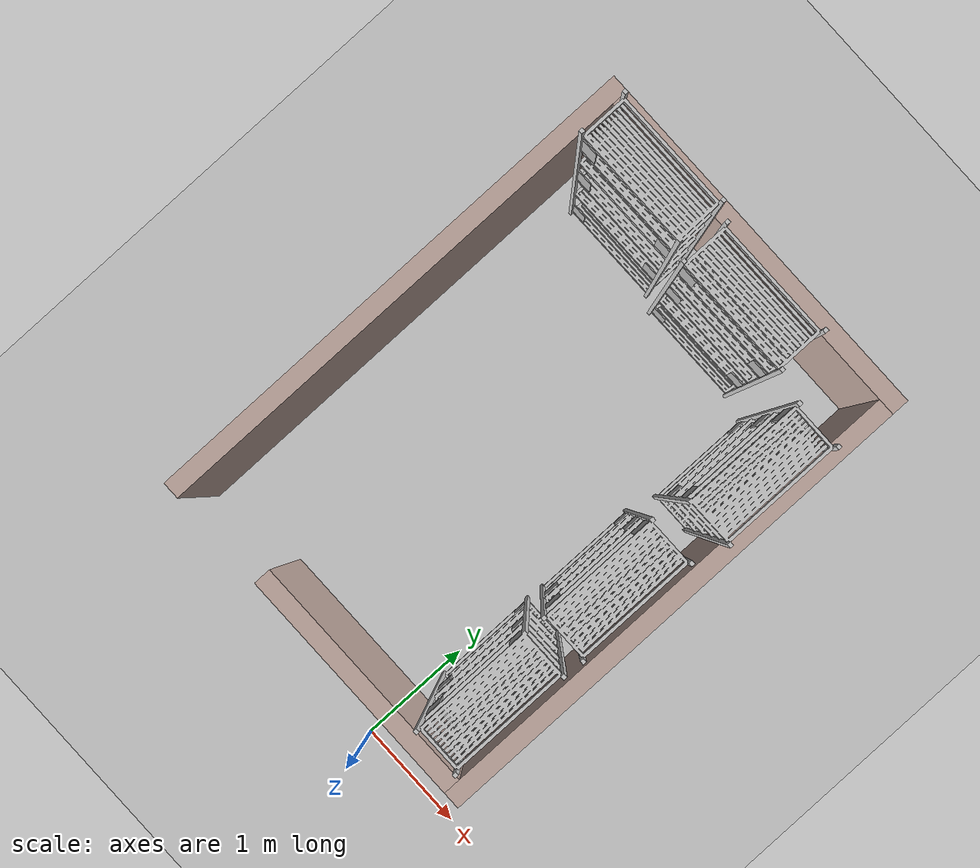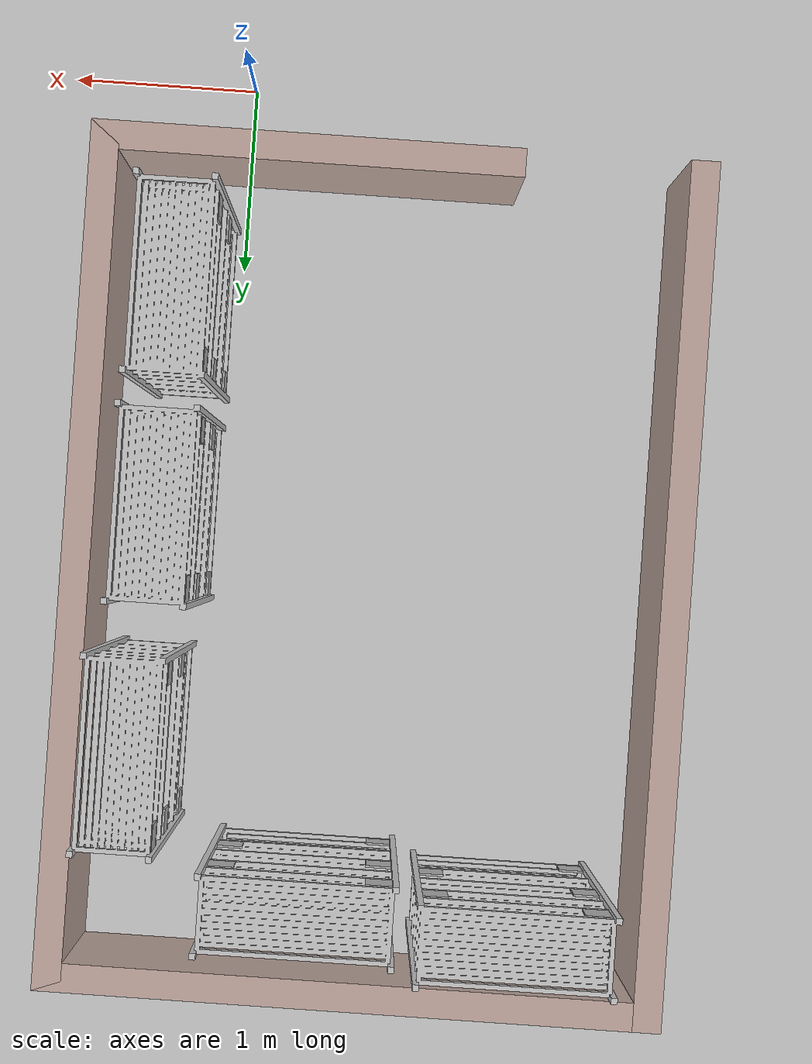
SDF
<sdf version="1.7">
 <world name="default">
  <light name="sun" type="directional">
   <pose>0 0 10 0 -0 0</pose>
   <diffuse>0.8 0.8 0.8 1</diffuse>
   <specular>0.2 0.2 0.2 1</specular>
   <attenuation>
    <range>1000</range>
    <constant>0.9</constant>
    <linear>0.01</linear>
    <quadratic>0.001</quadratic>
   </attenuation>
   <direction>-0.5 0.1 -0.9</direction>
   <spot><inner_angle>0</inner_angle><outer_angle>0</outer_angle><falloff>0</falloff></spot>
  </light>
  <model name="ground_plane">
   <static>1</static>
   <link name="link1">
    <collision name="collision">
     <geometry><plane><normal>0 0 1</normal><size>100 100</size></plane></geometry>
     <surface><friction><ode><mu>100</mu><mu2>50</mu2></ode></friction></surface>
    </collision>
    <visual name="visual">
     <cast_shadows>0</cast_shadows>
     <geometry><plane><normal>0 0 1</normal><size>100 100</size></plane></geometry>
     <material>
      <script><uri>file://media/materials/scripts/gazebo.material</uri><name>Gazebo/Grey</name></script>
     </material>
    </visual>
   </link>
  </model>
  <gravity>0 0 -9.8</gravity>
  <magnetic_field>6e-06 2.3e-05 -4.2e-05</magnetic_field>
  <atmosphere type="adiabatic"/>
  <physics type="ode">
   <max_step_size>0.001</max_step_size>
   <real_time_factor>1</real_time_factor>
   <real_time_update_rate>1000</real_time_update_rate>
  </physics>
  <scene><ambient>0.4 0.4 0.4 1</ambient><background>0.7 0.7 0.7 1</background><shadows>1</shadows></scene>
  <audio><device>default</device></audio>
  <spherical_coordinates>
   <surface_model>EARTH_WGS84</surface_model>
   <latitude_deg>0</latitude_deg>
   <longitude_deg>0</longitude_deg>
   <elevation>0</elevation>
   <heading_deg>0</heading_deg>
  </spherical_coordinates>
  <model name="Untitled">
   <pose>-0.84474 2.62917 0 0 -0 0</pose>
   <link name="Wall_0">
    <collision name="Wall_0_Collision">
     <geometry><box><size>4.5 0.15 0.9</size></box></geometry>
     <pose>0 0 0.45 0 -0 0</pose>
    </collision>
    <visual name="Wall_0_Visual">
     <pose>0 0 0.45 0 -0 0</pose>
     <geometry><box><size>4.5 0.15 0.9</size></box></geometry>
     <material>
      <script><uri>file://media/materials/scripts/gazebo.material</uri><name>Gazebo/Grey</name></script>
      <ambient>0.760784 0.662745 0.627451 1</ambient>
     </material>
     <meta><layer>0</layer></meta>
    </visual>
    <pose>-1.55 -0 0 0 -0 1.5708</pose>
   </link>
   <link name="Wall_1">
    <collision name="Wall_1_Collision">
     <geometry><box><size>3.25 0.15 0.9</size></box></geometry>
     <pose>0 0 0.45 0 -0 0</pose>
    </collision>
    <visual name="Wall_1_Visual">
     <pose>0 0 0.45 0 -0 0</pose>
     <geometry><box><size>3.25 0.15 0.9</size></box></geometry>
     <material>
      <script><uri>file://media/materials/scripts/gazebo.material</uri><name>Gazebo/Grey</name></script>
      <ambient>0.760784 0.662745 0.627451 1</ambient>
     </material>
     <meta><layer>0</layer></meta>
    </visual>
    <pose>-0 2.175 0 0 -0 0</pose>
   </link>
   <link name="Wall_2">
    <collision name="Wall_2_Collision">
     <geometry><box><size>4.5 0.15 0.9</size></box></geometry>
     <pose>0 0 0.45 0 -0 0</pose>
    </collision>
    <visual name="Wall_2_Visual">
     <pose>0 0 0.45 0 -0 0</pose>
     <geometry><box><size>4.5 0.15 0.9</size></box></geometry>
     <material>
      <script><uri>file://media/materials/scripts/gazebo.material</uri><name>Gazebo/Grey</name></script>
      <ambient>0.760784 0.662745 0.627451 1</ambient>
     </material>
     <meta><layer>0</layer></meta>
    </visual>
    <pose>1.55 -0 0 0 -0 -1.5708</pose>
   </link>
   <link name="Wall_3">
    <collision name="Wall_3_Collision">
     <geometry><box><size>2.25 0.15 0.9</size></box></geometry>
     <pose>0 0 0.45 0 -0 0</pose>
    </collision>
    <visual name="Wall_3_Visual">
     <pose>0 0 0.45 0 -0 0</pose>
     <geometry><box><size>2.25 0.15 0.9</size></box></geometry>
     <material>
      <script><uri>file://media/materials/scripts/gazebo.material</uri><name>Gazebo/Grey</name></script>
      <ambient>0.760784 0.662745 0.627451 1</ambient>
     </material>
     <meta><layer>0</layer></meta>
    </visual>
    <pose>0.5 -2.175 0 0 -0 3.14159</pose>
   </link>
   <static>1</static>
  </model>
  <model name="shelf_with_qrs_1">
   <static>true</static>
   <pose>-1.630505 4.352807 0 0 0 -3.14</pose>
   <link name="shelf_frame">
    <visual name="visual">
     <geometry>
      <mesh><uri>file:///root/inter_iit_ws/src/mecanum_gazebo/arena/models/shelf.dae</uri></mesh>
     </geometry>
    </visual>
    <collision name="collision">
     <geometry>
      <mesh><uri>file:///root/inter_iit_ws/src/mecanum_gazebo/arena/models/shelf.dae</uri></mesh>
     </geometry>
    </collision>
   </link>
   <link name="qr_1">
    <pose>-0.39 0.18 1.22 0 0 0</pose>
    <visual name="visual">
     <geometry><mesh><uri>file:///root/inter_iit_ws/src/mecanum_gazebo/arena/models/qr.dae</uri></mesh></geometry>
     <material>
      <script>
       <uri>file:///root/inter_iit_ws/src/mecanum_gazebo/arena/materials/scripts/my_materials.material</uri>
       <name>MyQR/QR1</name>
      </script>
     </material>
    </visual>
    <collision name="collision">
     <geometry><mesh><uri>file:///root/inter_iit_ws/src/mecanum_gazebo/arena/models/qr.dae</uri></mesh></geometry>
    </collision>
   </link>
   <link name="qr_2">
    <pose>0.39 0.18 0.87 0 0 0</pose>
    <visual name="visual">
     <geometry><mesh><uri>file:///root/inter_iit_ws/src/mecanum_gazebo/arena/models/qr.dae</uri></mesh></geometry>
     <material>
      <script>
       <uri>file:///root/inter_iit_ws/src/mecanum_gazebo/arena/materials/scripts/my_materials.material</uri>
       <name>MyQR/QR2</name>
      </script>
     </material>
    </visual>
    <collision name="collision">
     <geometry><mesh><uri>file:///root/inter_iit_ws/src/mecanum_gazebo/arena/models/qr.dae</uri></mesh></geometry>
    </collision>
   </link>
   <link name="qr_3">
    <pose>-0.39 0.18 0.52 0 0 0</pose>
    <visual name="visual">
     <geometry><mesh><uri>file:///root/inter_iit_ws/src/mecanum_gazebo/arena/models/qr.dae</uri></mesh></geometry>
     <material>
      <script>
       <uri>file:///root/inter_iit_ws/src/mecanum_gazebo/arena/materials/scripts/my_materials.material</uri>
       <name>MyQR/QR3</name>
      </script>
     </material>
    </visual>
    <collision name="collision">
     <geometry><mesh><uri>file:///root/inter_iit_ws/src/mecanum_gazebo/arena/models/qr.dae</uri></mesh></geometry>
    </collision>
   </link>
   <link name="qr_4">
    <pose>0.39 0.18 0.06 0 0 0</pose>
    <visual name="visual">
     <geometry><mesh><uri>file:///root/inter_iit_ws/src/mecanum_gazebo/arena/models/qr.dae</uri></mesh></geometry>
     <material>
      <script>
       <uri>file:///root/inter_iit_ws/src/mecanum_gazebo/arena/materials/scripts/my_materials.material</uri>
       <name>MyQR/QR1</name>
      </script>
     </material>
    </visual>
    <collision name="collision">
     <geometry><mesh><uri>file:///root/inter_iit_ws/src/mecanum_gazebo/arena/models/qr.dae</uri></mesh></geometry>
    </collision>
   </link>
   <link name="qr_5">
    <pose>0.39 0.18 1.475 0 0 0</pose>
    <visual name="visual">
     <geometry><mesh><uri>file:///root/inter_iit_ws/src/mecanum_gazebo/arena/models/qr.dae</uri></mesh></geometry>
     <material>
      <script>
       <uri>file:///root/inter_iit_ws/src/mecanum_gazebo/arena/materials/scripts/my_materials.material</uri>
       <name>MyQR/QR3</name>
      </script>
     </material>
    </visual>
    <collision name="collision">
     <geometry><mesh><uri>file:///root/inter_iit_ws/src/mecanum_gazebo/arena/models/qr.dae</uri></mesh></geometry>
    </collision>
   </link>
  </model>
  <model name="shelf_with_qrs_2">
   <static>true</static>
   <pose>-0.568534 4.27874 0 0 0 -3.14</pose>
   <link name="shelf_frame">
    <visual name="visual">
     <geometry>
      <mesh><uri>file:///root/inter_iit_ws/src/mecanum_gazebo/arena/models/shelf.dae</uri></mesh>
     </geometry>
    </visual>
    <collision name="collision">
     <geometry>
      <mesh><uri>file:///root/inter_iit_ws/src/mecanum_gazebo/arena/models/shelf.dae</uri></mesh>
     </geometry>
    </collision>
   </link>
   <link name="qr_1">
    <pose>-0.39 0.18 1.22 0 0 0</pose>
    <visual name="visual">
     <geometry><mesh><uri>file:///root/inter_iit_ws/src/mecanum_gazebo/arena/models/qr.dae</uri></mesh></geometry>
     <material>
      <script>
       <uri>file:///root/inter_iit_ws/src/mecanum_gazebo/arena/materials/scripts/my_materials.material</uri>
       <name>MyQR/QR1</name>
      </script>
     </material>
    </visual>
    <collision name="collision">
     <geometry><mesh><uri>file:///root/inter_iit_ws/src/mecanum_gazebo/arena/models/qr.dae</uri></mesh></geometry>
    </collision>
   </link>
   <link name="qr_2">
    <pose>0.39 0.18 0.87 0 0 0</pose>
    <visual name="visual">
     <geometry><mesh><uri>file:///root/inter_iit_ws/src/mecanum_gazebo/arena/models/qr.dae</uri></mesh></geometry>
     <material>
      <script>
       <uri>file:///root/inter_iit_ws/src/mecanum_gazebo/arena/materials/scripts/my_materials.material</uri>
       <name>MyQR/QR2</name>
      </script>
     </material>
    </visual>
    <collision name="collision">
     <geometry><mesh><uri>file:///root/inter_iit_ws/src/mecanum_gazebo/arena/models/qr.dae</uri></mesh></geometry>
    </collision>
   </link>
   <link name="qr_3">
    <pose>-0.39 0.18 0.52 0 0 0</pose>
    <visual name="visual">
     <geometry><mesh><uri>file:///root/inter_iit_ws/src/mecanum_gazebo/arena/models/qr.dae</uri></mesh></geometry>
     <material>
      <script>
       <uri>file:///root/inter_iit_ws/src/mecanum_gazebo/arena/materials/scripts/my_materials.material</uri>
       <name>MyQR/QR3</name>
      </script>
     </material>
    </visual>
    <collision name="collision">
     <geometry><mesh><uri>file:///root/inter_iit_ws/src/mecanum_gazebo/arena/models/qr.dae</uri></mesh></geometry>
    </collision>
   </link>
   <link name="qr_4">
    <pose>0.39 0.18 0.06 0 0 0</pose>
    <visual name="visual">
     <geometry><mesh><uri>file:///root/inter_iit_ws/src/mecanum_gazebo/arena/models/qr.dae</uri></mesh></geometry>
     <material>
      <script>
       <uri>file:///root/inter_iit_ws/src/mecanum_gazebo/arena/materials/scripts/my_materials.material</uri>
       <name>MyQR/QR1</name>
      </script>
     </material>
    </visual>
    <collision name="collision">
     <geometry><mesh><uri>file:///root/inter_iit_ws/src/mecanum_gazebo/arena/models/qr.dae</uri></mesh></geometry>
    </collision>
   </link>
   <link name="qr_5">
    <pose>0.39 0.18 1.475 0 0 0</pose>
    <visual name="visual">
     <geometry><mesh><uri>file:///root/inter_iit_ws/src/mecanum_gazebo/arena/models/qr.dae</uri></mesh></geometry>
     <material>
      <script>
       <uri>file:///root/inter_iit_ws/src/mecanum_gazebo/arena/materials/scripts/my_materials.material</uri>
       <name>MyQR/QR3</name>
      </script>
     </material>
    </visual>
    <collision name="collision">
     <geometry><mesh><uri>file:///root/inter_iit_ws/src/mecanum_gazebo/arena/models/qr.dae</uri></mesh></geometry>
    </collision>
   </link>
  </model>
  <model name="shelf_with_qrs_3">
   <static>true</static>
   <pose>0.325167 3.557165 0 0 0 1.57</pose>
   <link name="shelf_frame">
    <visual name="visual">
     <geometry>
      <mesh><uri>file:///root/inter_iit_ws/src/mecanum_gazebo/arena/models/shelf.dae</uri></mesh>
     </geometry>
    </visual>
    <collision name="collision">
     <geometry>
      <mesh><uri>file:///root/inter_iit_ws/src/mecanum_gazebo/arena/models/shelf.dae</uri></mesh>
     </geometry>
    </collision>
   </link>
   <link name="qr_1">
    <pose>-0.39 0.18 1.22 0 0 0</pose>
    <visual name="visual">
     <geometry><mesh><uri>file:///root/inter_iit_ws/src/mecanum_gazebo/arena/models/qr.dae</uri></mesh></geometry>
     <material>
      <script>
       <uri>file:///root/inter_iit_ws/src/mecanum_gazebo/arena/materials/scripts/my_materials.material</uri>
       <name>MyQR/QR1</name>
      </script>
     </material>
    </visual>
    <collision name="collision">
     <geometry><mesh><uri>file:///root/inter_iit_ws/src/mecanum_gazebo/arena/models/qr.dae</uri></mesh></geometry>
    </collision>
   </link>
   <link name="qr_2">
    <pose>0.39 0.18 0.87 0 0 0</pose>
    <visual name="visual">
     <geometry><mesh><uri>file:///root/inter_iit_ws/src/mecanum_gazebo/arena/models/qr.dae</uri></mesh></geometry>
     <material>
      <script>
       <uri>file:///root/inter_iit_ws/src/mecanum_gazebo/arena/materials/scripts/my_materials.material</uri>
       <name>MyQR/QR2</name>
      </script>
     </material>
    </visual>
    <collision name="collision">
     <geometry><mesh><uri>file:///root/inter_iit_ws/src/mecanum_gazebo/arena/models/qr.dae</uri></mesh></geometry>
    </collision>
   </link>
   <link name="qr_3">
    <pose>-0.39 0.18 0.52 0 0 0</pose>
    <visual name="visual">
     <geometry><mesh><uri>file:///root/inter_iit_ws/src/mecanum_gazebo/arena/models/qr.dae</uri></mesh></geometry>
     <material>
      <script>
       <uri>file:///root/inter_iit_ws/src/mecanum_gazebo/arena/materials/scripts/my_materials.material</uri>
       <name>MyQR/QR3</name>
      </script>
     </material>
    </visual>
    <collision name="collision">
     <geometry><mesh><uri>file:///root/inter_iit_ws/src/mecanum_gazebo/arena/models/qr.dae</uri></mesh></geometry>
    </collision>
   </link>
   <link name="qr_4">
    <pose>0.39 0.18 0.06 0 0 0</pose>
    <visual name="visual">
     <geometry><mesh><uri>file:///root/inter_iit_ws/src/mecanum_gazebo/arena/models/qr.dae</uri></mesh></geometry>
     <material>
      <script>
       <uri>file:///root/inter_iit_ws/src/mecanum_gazebo/arena/materials/scripts/my_materials.material</uri>
       <name>MyQR/QR1</name>
      </script>
     </material>
    </visual>
    <collision name="collision">
     <geometry><mesh><uri>file:///root/inter_iit_ws/src/mecanum_gazebo/arena/models/qr.dae</uri></mesh></geometry>
    </collision>
   </link>
   <link name="qr_5">
    <pose>0.39 0.18 1.475 0 0 0</pose>
    <visual name="visual">
     <geometry><mesh><uri>file:///root/inter_iit_ws/src/mecanum_gazebo/arena/models/qr.dae</uri></mesh></geometry>
     <material>
      <script>
       <uri>file:///root/inter_iit_ws/src/mecanum_gazebo/arena/materials/scripts/my_materials.material</uri>
       <name>MyQR/QR3</name>
      </script>
     </material>
    </visual>
    <collision name="collision">
     <geometry><mesh><uri>file:///root/inter_iit_ws/src/mecanum_gazebo/arena/models/qr.dae</uri></mesh></geometry>
    </collision>
   </link>
  </model>
  <model name="shelf_with_qrs_4">
   <static>true</static>
   <pose>0.246436 2.353380 0 0 0 1.57</pose>
   <link name="shelf_frame">
    <visual name="visual">
     <geometry>
      <mesh><uri>file:///root/inter_iit_ws/src/mecanum_gazebo/arena/models/shelf.dae</uri></mesh>
     </geometry>
    </visual>
    <collision name="collision">
     <geometry>
      <mesh><uri>file:///root/inter_iit_ws/src/mecanum_gazebo/arena/models/shelf.dae</uri></mesh>
     </geometry>
    </collision>
   </link>
   <link name="qr_1">
    <pose>-0.39 0.18 1.22 0 0 0</pose>
    <visual name="visual">
     <geometry><mesh><uri>file:///root/inter_iit_ws/src/mecanum_gazebo/arena/models/qr.dae</uri></mesh></geometry>
     <material>
      <script>
       <uri>file:///root/inter_iit_ws/src/mecanum_gazebo/arena/materials/scripts/my_materials.material</uri>
       <name>MyQR/QR1</name>
      </script>
     </material>
    </visual>
    <collision name="collision">
     <geometry><mesh><uri>file:///root/inter_iit_ws/src/mecanum_gazebo/arena/models/qr.dae</uri></mesh></geometry>
    </collision>
   </link>
   <link name="qr_2">
    <pose>0.39 0.18 0.87 0 0 0</pose>
    <visual name="visual">
     <geometry><mesh><uri>file:///root/inter_iit_ws/src/mecanum_gazebo/arena/models/qr.dae</uri></mesh></geometry>
     <material>
      <script>
       <uri>file:///root/inter_iit_ws/src/mecanum_gazebo/arena/materials/scripts/my_materials.material</uri>
       <name>MyQR/QR2</name>
      </script>
     </material>
    </visual>
    <collision name="collision">
     <geometry><mesh><uri>file:///root/inter_iit_ws/src/mecanum_gazebo/arena/models/qr.dae</uri></mesh></geometry>
    </collision>
   </link>
   <link name="qr_3">
    <pose>-0.39 0.18 0.52 0 0 0</pose>
    <visual name="visual">
     <geometry><mesh><uri>file:///root/inter_iit_ws/src/mecanum_gazebo/arena/models/qr.dae</uri></mesh></geometry>
     <material>
      <script>
       <uri>file:///root/inter_iit_ws/src/mecanum_gazebo/arena/materials/scripts/my_materials.material</uri>
       <name>MyQR/QR3</name>
      </script>
     </material>
    </visual>
    <collision name="collision">
     <geometry><mesh><uri>file:///root/inter_iit_ws/src/mecanum_gazebo/arena/models/qr.dae</uri></mesh></geometry>
    </collision>
   </link>
   <link name="qr_4">
    <pose>0.39 0.18 0.06 0 0 0</pose>
    <visual name="visual">
     <geometry><mesh><uri>file:///root/inter_iit_ws/src/mecanum_gazebo/arena/models/qr.dae</uri></mesh></geometry>
     <material>
      <script>
       <uri>file:///root/inter_iit_ws/src/mecanum_gazebo/arena/materials/scripts/my_materials.material</uri>
       <name>MyQR/QR1</name>
      </script>
     </material>
    </visual>
    <collision name="collision">
     <geometry><mesh><uri>file:///root/inter_iit_ws/src/mecanum_gazebo/arena/models/qr.dae</uri></mesh></geometry>
    </collision>
   </link>
   <link name="qr_5">
    <pose>0.39 0.18 1.475 0 0 0</pose>
    <visual name="visual">
     <geometry><mesh><uri>file:///root/inter_iit_ws/src/mecanum_gazebo/arena/models/qr.dae</uri></mesh></geometry>
     <material>
      <script>
       <uri>file:///root/inter_iit_ws/src/mecanum_gazebo/arena/materials/scripts/my_materials.material</uri>
       <name>MyQR/QR3</name>
      </script>
     </material>
    </visual>
    <collision name="collision">
     <geometry><mesh><uri>file:///root/inter_iit_ws/src/mecanum_gazebo/arena/models/qr.dae</uri></mesh></geometry>
    </collision>
   </link>
  </model>
  <model name="shelf_with_qrs_5">
   <static>true</static>
   <pose>0.235835 1.254196 0 0 0 1.57</pose>
   <link name="shelf_frame">
    <visual name="visual">
     <geometry>
      <mesh><uri>file:///root/inter_iit_ws/src/mecanum_gazebo/arena/models/shelf.dae</uri></mesh>
     </geometry>
    </visual>
    <collision name="collision">
     <geometry>
      <mesh><uri>file:///root/inter_iit_ws/src/mecanum_gazebo/arena/models/shelf.dae</uri></mesh>
     </geometry>
    </collision>
   </link>
   <link name="qr_1">
    <pose>-0.39 0.18 1.22 0 0 0</pose>
    <visual name="visual">
     <geometry><mesh><uri>file:///root/inter_iit_ws/src/mecanum_gazebo/arena/models/qr.dae</uri></mesh></geometry>
     <material>
      <script>
       <uri>file:///root/inter_iit_ws/src/mecanum_gazebo/arena/materials/scripts/my_materials.material</uri>
       <name>MyQR/QR1</name>
      </script>
     </material>
    </visual>
    <collision name="collision">
     <geometry><mesh><uri>file:///root/inter_iit_ws/src/mecanum_gazebo/arena/models/qr.dae</uri></mesh></geometry>
    </collision>
   </link>
   <link name="qr_2">
    <pose>0.39 0.18 0.87 0 0 0</pose>
    <visual name="visual">
     <geometry><mesh><uri>file:///root/inter_iit_ws/src/mecanum_gazebo/arena/models/qr.dae</uri></mesh></geometry>
     <material>
      <script>
       <uri>file:///root/inter_iit_ws/src/mecanum_gazebo/arena/materials/scripts/my_materials.material</uri>
       <name>MyQR/QR2</name>
      </script>
     </material>
    </visual>
    <collision name="collision">
     <geometry><mesh><uri>file:///root/inter_iit_ws/src/mecanum_gazebo/arena/models/qr.dae</uri></mesh></geometry>
    </collision>
   </link>
   <link name="qr_3">
    <pose>-0.39 0.18 0.52 0 0 0</pose>
    <visual name="visual">
     <geometry><mesh><uri>file:///root/inter_iit_ws/src/mecanum_gazebo/arena/models/qr.dae</uri></mesh></geometry>
     <material>
      <script>
       <uri>file:///root/inter_iit_ws/src/mecanum_gazebo/arena/materials/scripts/my_materials.material</uri>
       <name>MyQR/QR3</name>
      </script>
     </material>
    </visual>
    <collision name="collision">
     <geometry><mesh><uri>file:///root/inter_iit_ws/src/mecanum_gazebo/arena/models/qr.dae</uri></mesh></geometry>
    </collision>
   </link>
   <link name="qr_4">
    <pose>0.39 0.18 0.06 0 0 0</pose>
    <visual name="visual">
     <geometry><mesh><uri>file:///root/inter_iit_ws/src/mecanum_gazebo/arena/models/qr.dae</uri></mesh></geometry>
     <material>
      <script>
       <uri>file:///root/inter_iit_ws/src/mecanum_gazebo/arena/materials/scripts/my_materials.material</uri>
       <name>MyQR/QR1</name>
      </script>
     </material>
    </visual>
    <collision name="collision">
     <geometry><mesh><uri>file:///root/inter_iit_ws/src/mecanum_gazebo/arena/models/qr.dae</uri></mesh></geometry>
    </collision>
   </link>
   <link name="qr_5">
    <pose>0.39 0.18 1.475 0 0 0</pose>
    <visual name="visual">
     <geometry><mesh><uri>file:///root/inter_iit_ws/src/mecanum_gazebo/arena/models/qr.dae</uri></mesh></geometry>
     <material>
      <script>
       <uri>file:///root/inter_iit_ws/src/mecanum_gazebo/arena/materials/scripts/my_materials.material</uri>
       <name>MyQR/QR3</name>
      </script>
     </material>
    </visual>
    <collision name="collision">
     <geometry><mesh><uri>file:///root/inter_iit_ws/src/mecanum_gazebo/arena/models/qr.dae</uri></mesh></geometry>
    </collision>
   </link>
  </model>
 </world>
</sdf>
